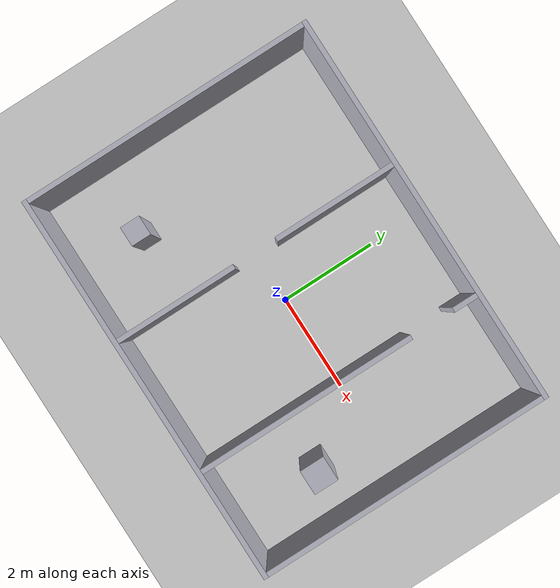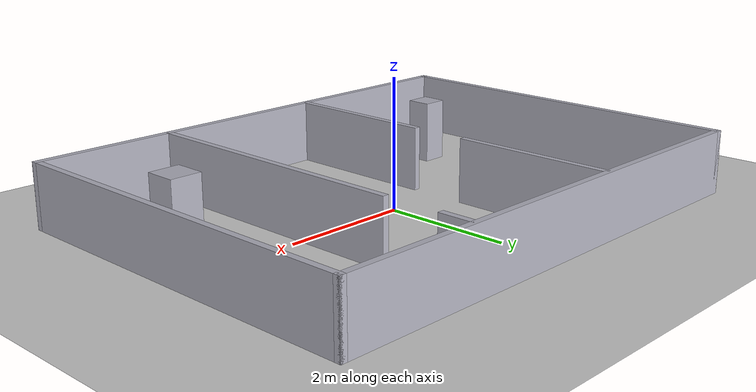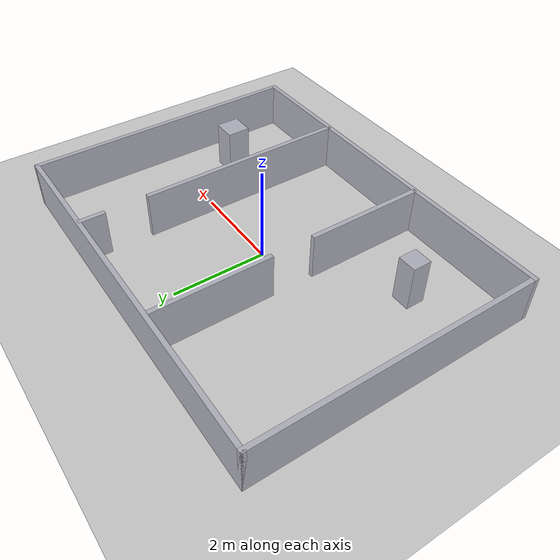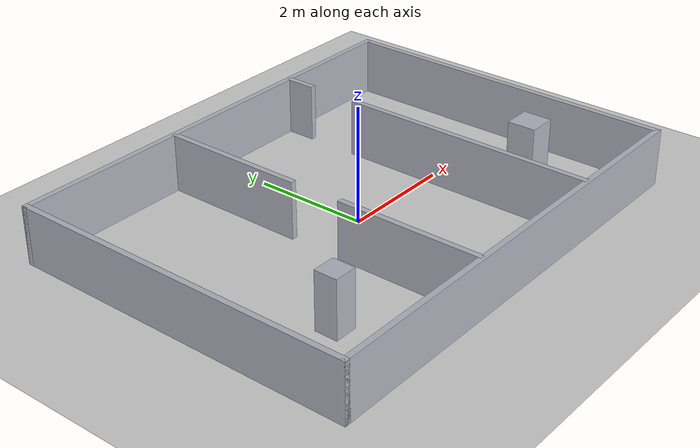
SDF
<?xml version="1.0" ?>
<sdf version="1.9">
  <world name="room">
    <physics name="1ms" type="ignored">
      <max_step_size>0.001</max_step_size>
      <real_time_factor>1.0</real_time_factor>
    </physics>

    <plugin filename="gz-sim-physics-system" name="gz::sim::systems::Physics"/>
    <plugin filename="gz-sim-user-commands-system" name="gz::sim::systems::UserCommands"/>
    <plugin filename="gz-sim-scene-broadcaster-system" name="gz::sim::systems::SceneBroadcaster"/>
    <plugin filename="gz-sim-contact-system" name="gz::sim::systems::Contact"/>
    <plugin filename="gz-sim-sensors-system" name="gz::sim::systems::Sensors">
      <render_engine>ogre2</render_engine>
    </plugin>

    <light type="directional" name="sun">
      <cast_shadows>true</cast_shadows>
      <pose>0 0 10 0 0 0</pose>
      <diffuse>0.8 0.8 0.8 1</diffuse>
      <specular>0.2 0.2 0.2 1</specular>
      <attenuation>
        <range>1000</range>
        <constant>0.9</constant>
        <linear>0.01</linear>
        <quadratic>0.001</quadratic>
      </attenuation>
      <direction>-0.5 0.1 -0.9</direction>
    </light>

    <model name="ground_plane">
      <static>true</static>
      <link name="link">
        <collision name="collision">
          <geometry>
            <plane>
              <normal>0 0 1</normal>
            </plane>
          </geometry>
        </collision>
        <visual name="visual">
          <geometry>
            <plane>
              <normal>0 0 1</normal>
              <size>100 100</size>
            </plane>
          </geometry>
          <material>
            <ambient>0.8 0.8 0.8 1</ambient>
            <diffuse>0.8 0.8 0.8 1</diffuse>
            <specular>0.8 0.8 0.8 1</specular>
          </material>
        </visual>
      </link>
    </model>

    <!-- Outer walls: 8 x 6 m room centred on the origin. -->
    <model name="wall_north">
      <static>true</static>
      <pose>0.0 3.0 0.5 0 0 0</pose>
      <link name="link">
        <collision name="collision">
          <geometry><box><size>8.1 0.1 1.0</size></box></geometry>
        </collision>
        <visual name="visual">
          <geometry><box><size>8.1 0.1 1.0</size></box></geometry>
          <material>
            <ambient>0.7 0.7 0.75 1</ambient>
            <diffuse>0.7 0.7 0.75 1</diffuse>
          </material>
        </visual>
      </link>
    </model>

    <model name="wall_south">
      <static>true</static>
      <pose>0.0 -3.0 0.5 0 0 0</pose>
      <link name="link">
        <collision name="collision">
          <geometry><box><size>8.1 0.1 1.0</size></box></geometry>
        </collision>
        <visual name="visual">
          <geometry><box><size>8.1 0.1 1.0</size></box></geometry>
          <material>
            <ambient>0.7 0.7 0.75 1</ambient>
            <diffuse>0.7 0.7 0.75 1</diffuse>
          </material>
        </visual>
      </link>
    </model>

    <model name="wall_east">
      <static>true</static>
      <pose>4.0 0.0 0.5 0 0 0</pose>
      <link name="link">
        <collision name="collision">
          <geometry><box><size>0.1 6.1 1.0</size></box></geometry>
        </collision>
        <visual name="visual">
          <geometry><box><size>0.1 6.1 1.0</size></box></geometry>
          <material>
            <ambient>0.7 0.7 0.75 1</ambient>
            <diffuse>0.7 0.7 0.75 1</diffuse>
          </material>
        </visual>
      </link>
    </model>

    <model name="wall_west">
      <static>true</static>
      <pose>-4.0 0.0 0.5 0 0 0</pose>
      <link name="link">
        <collision name="collision">
          <geometry><box><size>0.1 6.1 1.0</size></box></geometry>
        </collision>
        <visual name="visual">
          <geometry><box><size>0.1 6.1 1.0</size></box></geometry>
          <material>
            <ambient>0.7 0.7 0.75 1</ambient>
            <diffuse>0.7 0.7 0.75 1</diffuse>
          </material>
        </visual>
      </link>
    </model>

    <!-- Internal divider at x=-1.0 with a 0.9 m doorway centred at y=0.
         Two segments: 6.0 m of wall minus a 0.9 m gap = 2.55 m each. -->
    <model name="divider_a_upper">
      <static>true</static>
      <pose>-1.0 1.7249999999999999 0.5 0 0 0</pose>
      <link name="link">
        <collision name="collision">
          <geometry><box><size>0.1 2.55 1.0</size></box></geometry>
        </collision>
        <visual name="visual">
          <geometry><box><size>0.1 2.55 1.0</size></box></geometry>
          <material>
            <ambient>0.7 0.7 0.75 1</ambient>
            <diffuse>0.7 0.7 0.75 1</diffuse>
          </material>
        </visual>
      </link>
    </model>

    <model name="divider_a_lower">
      <static>true</static>
      <pose>-1.0 -1.7249999999999999 0.5 0 0 0</pose>
      <link name="link">
        <collision name="collision">
          <geometry><box><size>0.1 2.55 1.0</size></box></geometry>
        </collision>
        <visual name="visual">
          <geometry><box><size>0.1 2.55 1.0</size></box></geometry>
          <material>
            <ambient>0.7 0.7 0.75 1</ambient>
            <diffuse>0.7 0.7 0.75 1</diffuse>
          </material>
        </visual>
      </link>
    </model>

    <!-- Second divider at x=+1.8, doorway offset to y=+2.0 so the robot cannot
         simply drive straight through both openings in a line. -->
    <model name="divider_b_lower">
      <static>true</static>
      <pose>1.8 -0.725 0.5 0 0 0</pose>
      <link name="link">
        <collision name="collision">
          <geometry><box><size>0.1 4.55 1.0</size></box></geometry>
        </collision>
        <visual name="visual">
          <geometry><box><size>0.1 4.55 1.0</size></box></geometry>
          <material>
            <ambient>0.7 0.7 0.75 1</ambient>
            <diffuse>0.7 0.7 0.75 1</diffuse>
          </material>
        </visual>
      </link>
    </model>

    <model name="divider_b_upper">
      <static>true</static>
      <pose>1.8 2.725 0.5 0 0 0</pose>
      <link name="link">
        <collision name="collision">
          <geometry><box><size>0.1 0.55 1.0</size></box></geometry>
        </collision>
        <visual name="visual">
          <geometry><box><size>0.1 0.55 1.0</size></box></geometry>
          <material>
            <ambient>0.7 0.7 0.75 1</ambient>
            <diffuse>0.7 0.7 0.75 1</diffuse>
          </material>
        </visual>
      </link>
    </model>

    <!-- A couple of free-standing obstacles, so the local planner has
         something to steer around that is not a wall. -->
    <model name="pillar_1">
      <static>true</static>
      <pose>-2.5 -1.6 0.5 0 0 0</pose>
      <link name="link">
        <collision name="collision">
          <geometry><box><size>0.4 0.4 1.0</size></box></geometry>
        </collision>
        <visual name="visual">
          <geometry><box><size>0.4 0.4 1.0</size></box></geometry>
          <material>
            <ambient>0.7 0.7 0.75 1</ambient>
            <diffuse>0.7 0.7 0.75 1</diffuse>
          </material>
        </visual>
      </link>
    </model>

    <model name="pillar_2">
      <static>true</static>
      <pose>3.0 -1.2 0.5 0 0 0</pose>
      <link name="link">
        <collision name="collision">
          <geometry><box><size>0.5 0.5 1.0</size></box></geometry>
        </collision>
        <visual name="visual">
          <geometry><box><size>0.5 0.5 1.0</size></box></geometry>
          <material>
            <ambient>0.7 0.7 0.75 1</ambient>
            <diffuse>0.7 0.7 0.75 1</diffuse>
          </material>
        </visual>
      </link>
    </model>

  </world>
</sdf>
